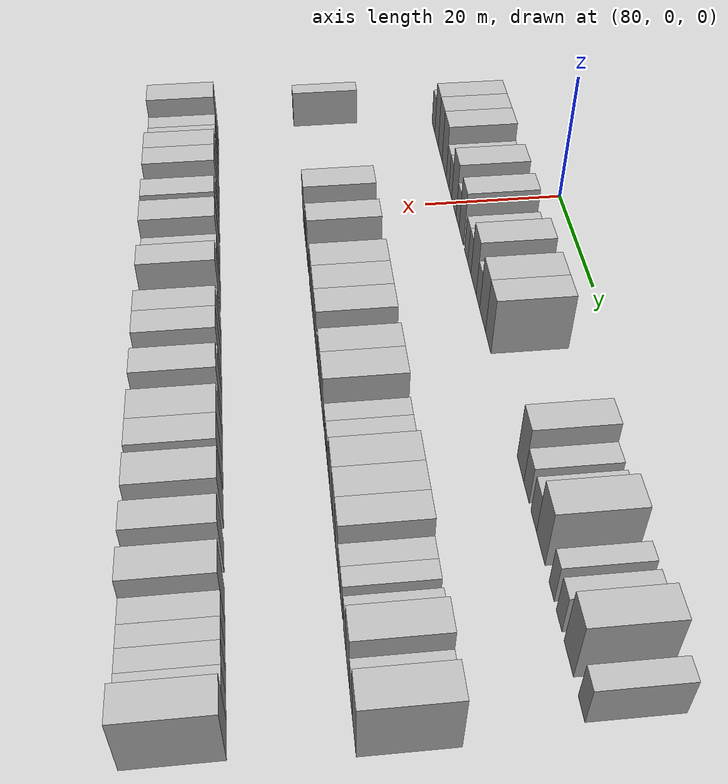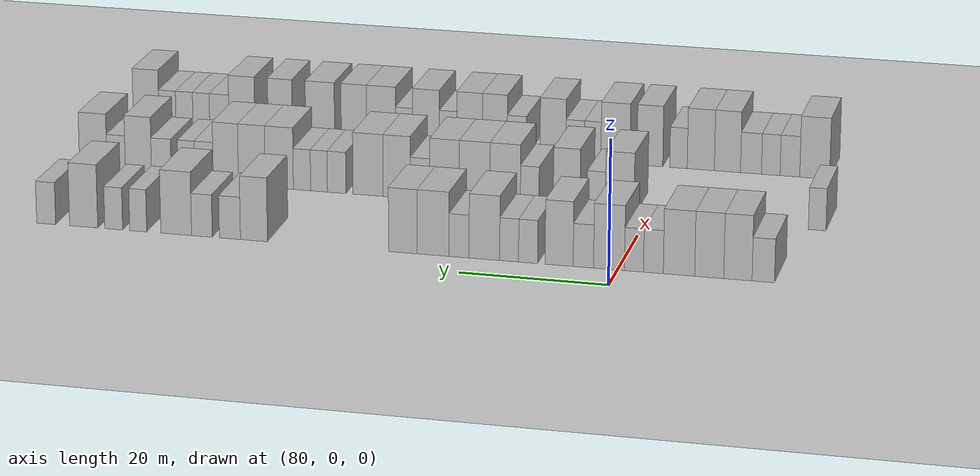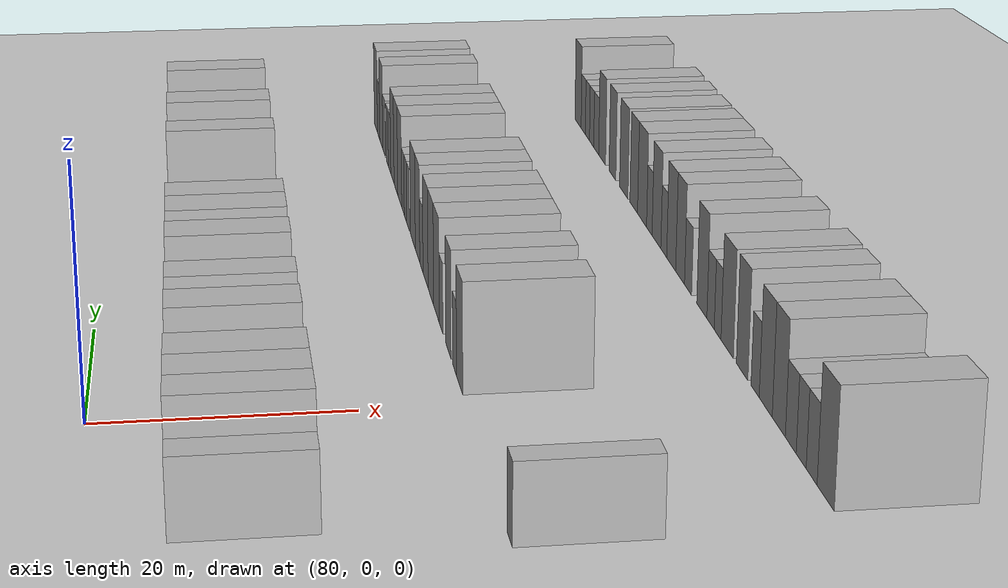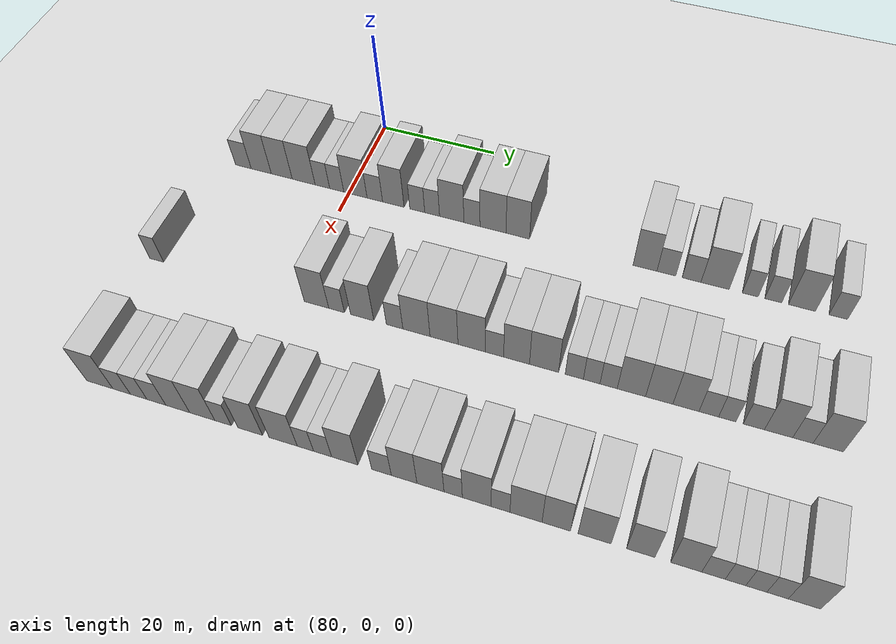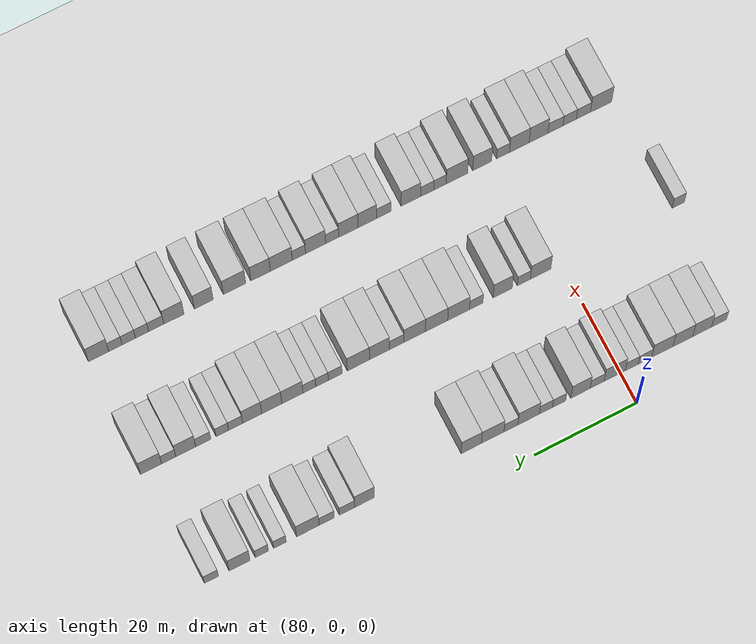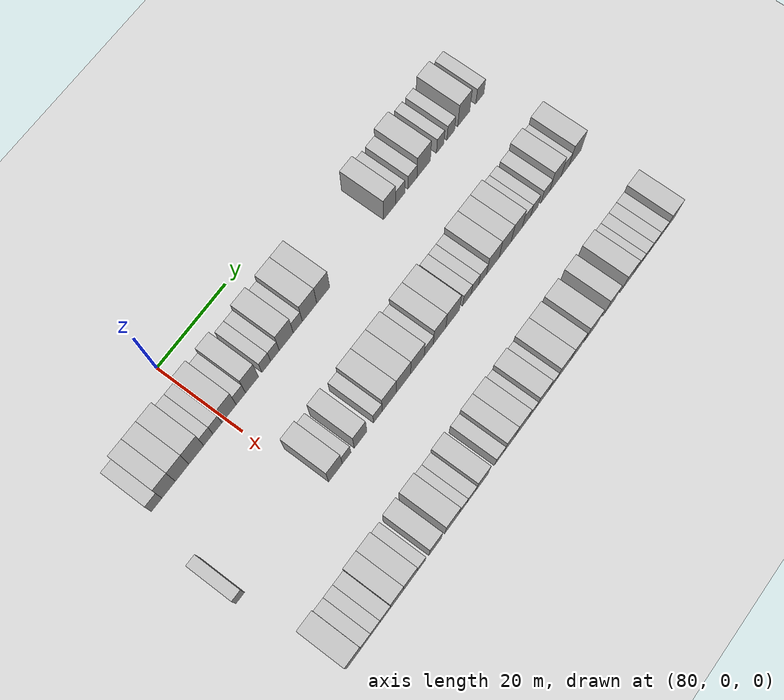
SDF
<sdf version="1.6">
 <world name="default">
  <include>
   <name>ground_plane_2</name>
   <uri>model://HANNAS_ground_plane</uri>
   <pose>100 0 0  0 0 0</pose>
  </include>
  <model name="building_651">
   <static>1</static>
   <pose>91.0000 -19.3339 0 0.000000 0.000000 0.000000</pose>
   <link name="link">
    <pose>0 0 3.00 0 0 0</pose>
    <collision name="collision"><geometry><box><size>10.0000 2.9604 6.0000</size></box></geometry></collision>
    <visual name="visual">
     <cast_shadows>0</cast_shadows>
     <geometry><box><size>10.0000 2.9604 6.0000</size></box></geometry>
     <material>
      <script>
       <uri>model://HANNAS_wall/materials/scripts</uri>
       <uri>model://HANNAS_wall/materials/textures</uri>
       <name>vrc/HANNAS_wall</name>
      </script>
     </material>
    </visual>
   </link>
  </model>
  <model name="building_652">
   <static>1</static>
   <pose>91.0000 -15.9872 0 0.000000 0.000000 0.000000</pose>
   <link name="link">
    <pose>0 0 4.50 0 0 0</pose>
    <collision name="collision"><geometry><box><size>10.0000 3.7330 9.0000</size></box></geometry></collision>
    <visual name="visual">
     <cast_shadows>0</cast_shadows>
     <geometry><box><size>10.0000 3.7330 9.0000</size></box></geometry>
     <material>
      <script>
       <uri>model://HANNAS_wall/materials/scripts</uri>
       <uri>model://HANNAS_wall/materials/textures</uri>
       <name>vrc/HANNAS_wall</name>
      </script>
     </material>
    </visual>
   </link>
  </model>
  <model name="building_653">
   <static>1</static>
   <pose>91.0000 -12.1934 0 0.000000 0.000000 0.000000</pose>
   <link name="link">
    <pose>0 0 4.50 0 0 0</pose>
    <collision name="collision"><geometry><box><size>10.0000 3.8545 9.0000</size></box></geometry></collision>
    <visual name="visual">
     <cast_shadows>0</cast_shadows>
     <geometry><box><size>10.0000 3.8545 9.0000</size></box></geometry>
     <material>
      <script>
       <uri>model://HANNAS_wall/materials/scripts</uri>
       <uri>model://HANNAS_wall/materials/textures</uri>
       <name>vrc/HANNAS_wall</name>
      </script>
     </material>
    </visual>
   </link>
  </model>
  <model name="building_654">
   <static>1</static>
   <pose>91.0000 -8.1770 0 0.000000 0.000000 0.000000</pose>
   <link name="link">
    <pose>0 0 4.50 0 0 0</pose>
    <collision name="collision"><geometry><box><size>10.0000 4.1783 9.0000</size></box></geometry></collision>
    <visual name="visual">
     <cast_shadows>0</cast_shadows>
     <geometry><box><size>10.0000 4.1783 9.0000</size></box></geometry>
     <material>
      <script>
       <uri>model://HANNAS_wall/materials/scripts</uri>
       <uri>model://HANNAS_wall/materials/textures</uri>
       <name>vrc/HANNAS_wall</name>
      </script>
     </material>
    </visual>
   </link>
  </model>
  <model name="building_655">
   <static>1</static>
   <pose>91.0000 -4.7690 0 0.000000 0.000000 0.000000</pose>
   <link name="link">
    <pose>0 0 3.00 0 0 0</pose>
    <collision name="collision"><geometry><box><size>10.0000 2.6377 6.0000</size></box></geometry></collision>
    <visual name="visual">
     <cast_shadows>0</cast_shadows>
     <geometry><box><size>10.0000 2.6377 6.0000</size></box></geometry>
     <material>
      <script>
       <uri>model://HANNAS_wall/materials/scripts</uri>
       <uri>model://HANNAS_wall/materials/textures</uri>
       <name>vrc/HANNAS_wall</name>
      </script>
     </material>
    </visual>
   </link>
  </model>
  <model name="building_656">
   <static>1</static>
   <pose>91.0000 -2.1821 0 0.000000 0.000000 0.000000</pose>
   <link name="link">
    <pose>0 0 3.00 0 0 0</pose>
    <collision name="collision"><geometry><box><size>10.0000 2.5361 6.0000</size></box></geometry></collision>
    <visual name="visual">
     <cast_shadows>0</cast_shadows>
     <geometry><box><size>10.0000 2.5361 6.0000</size></box></geometry>
     <material>
      <script>
       <uri>model://HANNAS_wall/materials/scripts</uri>
       <uri>model://HANNAS_wall/materials/textures</uri>
       <name>vrc/HANNAS_wall</name>
      </script>
     </material>
    </visual>
   </link>
  </model>
  <model name="building_657">
   <static>1</static>
   <pose>91.0000 1.1621 0 0.000000 0.000000 0.000000</pose>
   <link name="link">
    <pose>0 0 4.50 0 0 0</pose>
    <collision name="collision"><geometry><box><size>10.0000 4.1521 9.0000</size></box></geometry></collision>
    <visual name="visual">
     <cast_shadows>0</cast_shadows>
     <geometry><box><size>10.0000 4.1521 9.0000</size></box></geometry>
     <material>
      <script>
       <uri>model://HANNAS_wall/materials/scripts</uri>
       <uri>model://HANNAS_wall/materials/textures</uri>
       <name>vrc/HANNAS_wall</name>
      </script>
     </material>
    </visual>
   </link>
  </model>
  <model name="building_658">
   <static>1</static>
   <pose>91.0000 4.6110 0 0.000000 0.000000 0.000000</pose>
   <link name="link">
    <pose>0 0 3.00 0 0 0</pose>
    <collision name="collision"><geometry><box><size>10.0000 2.7458 6.0000</size></box></geometry></collision>
    <visual name="visual">
     <cast_shadows>0</cast_shadows>
     <geometry><box><size>10.0000 2.7458 6.0000</size></box></geometry>
     <material>
      <script>
       <uri>model://HANNAS_wall/materials/scripts</uri>
       <uri>model://HANNAS_wall/materials/textures</uri>
       <name>vrc/HANNAS_wall</name>
      </script>
     </material>
    </visual>
   </link>
  </model>
  <model name="building_659">
   <static>1</static>
   <pose>91.0000 7.8722 0 0.000000 0.000000 0.000000</pose>
   <link name="link">
    <pose>0 0 4.50 0 0 0</pose>
    <collision name="collision"><geometry><box><size>10.0000 3.7764 9.0000</size></box></geometry></collision>
    <visual name="visual">
     <cast_shadows>0</cast_shadows>
     <geometry><box><size>10.0000 3.7764 9.0000</size></box></geometry>
     <material>
      <script>
       <uri>model://HANNAS_wall/materials/scripts</uri>
       <uri>model://HANNAS_wall/materials/textures</uri>
       <name>vrc/HANNAS_wall</name>
      </script>
     </material>
    </visual>
   </link>
  </model>
  <model name="building_660">
   <static>1</static>
   <pose>91.0000 12.0545 0 0.000000 0.000000 0.000000</pose>
   <link name="link">
    <pose>0 0 3.00 0 0 0</pose>
    <collision name="collision"><geometry><box><size>10.0000 2.5881 6.0000</size></box></geometry></collision>
    <visual name="visual">
     <cast_shadows>0</cast_shadows>
     <geometry><box><size>10.0000 2.5881 6.0000</size></box></geometry>
     <material>
      <script>
       <uri>model://HANNAS_wall/materials/scripts</uri>
       <uri>model://HANNAS_wall/materials/textures</uri>
       <name>vrc/HANNAS_wall</name>
      </script>
     </material>
    </visual>
   </link>
  </model>
  <model name="building_661">
   <static>1</static>
   <pose>91.0000 14.6253 0 0.000000 0.000000 0.000000</pose>
   <link name="link">
    <pose>0 0 3.00 0 0 0</pose>
    <collision name="collision"><geometry><box><size>10.0000 2.5536 6.0000</size></box></geometry></collision>
    <visual name="visual">
     <cast_shadows>0</cast_shadows>
     <geometry><box><size>10.0000 2.5536 6.0000</size></box></geometry>
     <material>
      <script>
       <uri>model://HANNAS_wall/materials/scripts</uri>
       <uri>model://HANNAS_wall/materials/textures</uri>
       <name>vrc/HANNAS_wall</name>
      </script>
     </material>
    </visual>
   </link>
  </model>
  <model name="building_662">
   <static>1</static>
   <pose>91.0000 17.9892 0 0.000000 0.000000 0.000000</pose>
   <link name="link">
    <pose>0 0 4.50 0 0 0</pose>
    <collision name="collision"><geometry><box><size>10.0000 4.1741 9.0000</size></box></geometry></collision>
    <visual name="visual">
     <cast_shadows>0</cast_shadows>
     <geometry><box><size>10.0000 4.1741 9.0000</size></box></geometry>
     <material>
      <script>
       <uri>model://HANNAS_wall/materials/scripts</uri>
       <uri>model://HANNAS_wall/materials/textures</uri>
       <name>vrc/HANNAS_wall</name>
      </script>
     </material>
    </visual>
   </link>
  </model>
  <model name="building_663">
   <static>1</static>
   <pose>91.0000 21.4387 0 0.000000 0.000000 0.000000</pose>
   <link name="link">
    <pose>0 0 3.00 0 0 0</pose>
    <collision name="collision"><geometry><box><size>10.0000 2.7250 6.0000</size></box></geometry></collision>
    <visual name="visual">
     <cast_shadows>0</cast_shadows>
     <geometry><box><size>10.0000 2.7250 6.0000</size></box></geometry>
     <material>
      <script>
       <uri>model://HANNAS_wall/materials/scripts</uri>
       <uri>model://HANNAS_wall/materials/textures</uri>
       <name>vrc/HANNAS_wall</name>
      </script>
     </material>
    </visual>
   </link>
  </model>
  <model name="building_664">
   <static>1</static>
   <pose>91.0000 24.9845 0 0.000000 0.000000 0.000000</pose>
   <link name="link">
    <pose>0 0 4.50 0 0 0</pose>
    <collision name="collision"><geometry><box><size>10.0000 4.3666 9.0000</size></box></geometry></collision>
    <visual name="visual">
     <cast_shadows>0</cast_shadows>
     <geometry><box><size>10.0000 4.3666 9.0000</size></box></geometry>
     <material>
      <script>
       <uri>model://HANNAS_wall/materials/scripts</uri>
       <uri>model://HANNAS_wall/materials/textures</uri>
       <name>vrc/HANNAS_wall</name>
      </script>
     </material>
    </visual>
   </link>
  </model>
  <model name="building_665">
   <static>1</static>
   <pose>91.0000 29.1346 0 0.000000 0.000000 0.000000</pose>
   <link name="link">
    <pose>0 0 4.50 0 0 0</pose>
    <collision name="collision"><geometry><box><size>10.0000 3.9337 9.0000</size></box></geometry></collision>
    <visual name="visual">
     <cast_shadows>0</cast_shadows>
     <geometry><box><size>10.0000 3.9337 9.0000</size></box></geometry>
     <material>
      <script>
       <uri>model://HANNAS_wall/materials/scripts</uri>
       <uri>model://HANNAS_wall/materials/textures</uri>
       <name>vrc/HANNAS_wall</name>
      </script>
     </material>
    </visual>
   </link>
  </model>
  <model name="building_666">
   <static>1</static>
   <pose>91.0000 49.7744 0 0.000000 0.000000 0.000000</pose>
   <link name="link">
    <pose>0 0 4.50 0 0 0</pose>
    <collision name="collision"><geometry><box><size>10.0000 3.7819 9.0000</size></box></geometry></collision>
    <visual name="visual">
     <cast_shadows>0</cast_shadows>
     <geometry><box><size>10.0000 3.7819 9.0000</size></box></geometry>
     <material>
      <script>
       <uri>model://HANNAS_wall/materials/scripts</uri>
       <uri>model://HANNAS_wall/materials/textures</uri>
       <name>vrc/HANNAS_wall</name>
      </script>
     </material>
    </visual>
   </link>
  </model>
  <model name="building_667">
   <static>1</static>
   <pose>91.0000 53.1392 0 0.000000 0.000000 0.000000</pose>
   <link name="link">
    <pose>0 0 3.00 0 0 0</pose>
    <collision name="collision"><geometry><box><size>10.0000 2.9478 6.0000</size></box></geometry></collision>
    <visual name="visual">
     <cast_shadows>0</cast_shadows>
     <geometry><box><size>10.0000 2.9478 6.0000</size></box></geometry>
     <material>
      <script>
       <uri>model://HANNAS_wall/materials/scripts</uri>
       <uri>model://HANNAS_wall/materials/textures</uri>
       <name>vrc/HANNAS_wall</name>
      </script>
     </material>
    </visual>
   </link>
  </model>
  <model name="building_668">
   <static>1</static>
   <pose>91.0000 57.0679 0 0.000000 0.000000 0.000000</pose>
   <link name="link">
    <pose>0 0 3.00 0 0 0</pose>
    <collision name="collision"><geometry><box><size>10.0000 2.9097 6.0000</size></box></geometry></collision>
    <visual name="visual">
     <cast_shadows>0</cast_shadows>
     <geometry><box><size>10.0000 2.9097 6.0000</size></box></geometry>
     <material>
      <script>
       <uri>model://HANNAS_wall/materials/scripts</uri>
       <uri>model://HANNAS_wall/materials/textures</uri>
       <name>vrc/HANNAS_wall</name>
      </script>
     </material>
    </visual>
   </link>
  </model>
  <model name="building_669">
   <static>1</static>
   <pose>91.0000 60.6911 0 0.000000 0.000000 0.000000</pose>
   <link name="link">
    <pose>0 0 4.50 0 0 0</pose>
    <collision name="collision"><geometry><box><size>10.0000 4.3367 9.0000</size></box></geometry></collision>
    <visual name="visual">
     <cast_shadows>0</cast_shadows>
     <geometry><box><size>10.0000 4.3367 9.0000</size></box></geometry>
     <material>
      <script>
       <uri>model://HANNAS_wall/materials/scripts</uri>
       <uri>model://HANNAS_wall/materials/textures</uri>
       <name>vrc/HANNAS_wall</name>
      </script>
     </material>
    </visual>
   </link>
  </model>
  <model name="building_670">
   <static>1</static>
   <pose>91.0000 66.0617 0 0.000000 0.000000 0.000000</pose>
   <link name="link">
    <pose>0 0 3.00 0 0 0</pose>
    <collision name="collision"><geometry><box><size>10.0000 2.4045 6.0000</size></box></geometry></collision>
    <visual name="visual">
     <cast_shadows>0</cast_shadows>
     <geometry><box><size>10.0000 2.4045 6.0000</size></box></geometry>
     <material>
      <script>
       <uri>model://HANNAS_wall/materials/scripts</uri>
       <uri>model://HANNAS_wall/materials/textures</uri>
       <name>vrc/HANNAS_wall</name>
      </script>
     </material>
    </visual>
   </link>
  </model>
  <model name="building_671">
   <static>1</static>
   <pose>91.0000 69.5328 0 0.000000 0.000000 0.000000</pose>
   <link name="link">
    <pose>0 0 3.00 0 0 0</pose>
    <collision name="collision"><geometry><box><size>10.0000 2.5377 6.0000</size></box></geometry></collision>
    <visual name="visual">
     <cast_shadows>0</cast_shadows>
     <geometry><box><size>10.0000 2.5377 6.0000</size></box></geometry>
     <material>
      <script>
       <uri>model://HANNAS_wall/materials/scripts</uri>
       <uri>model://HANNAS_wall/materials/textures</uri>
       <name>vrc/HANNAS_wall</name>
      </script>
     </material>
    </visual>
   </link>
  </model>
  <model name="building_672">
   <static>1</static>
   <pose>91.0000 73.8067 0 0.000000 0.000000 0.000000</pose>
   <link name="link">
    <pose>0 0 4.50 0 0 0</pose>
    <collision name="collision"><geometry><box><size>10.0000 4.0100 9.0000</size></box></geometry></collision>
    <visual name="visual">
     <cast_shadows>0</cast_shadows>
     <geometry><box><size>10.0000 4.0100 9.0000</size></box></geometry>
     <material>
      <script>
       <uri>model://HANNAS_wall/materials/scripts</uri>
       <uri>model://HANNAS_wall/materials/textures</uri>
       <name>vrc/HANNAS_wall</name>
      </script>
     </material>
    </visual>
   </link>
  </model>
  <model name="building_673">
   <static>1</static>
   <pose>91.0000 79.1689 0 0.000000 0.000000 0.000000</pose>
   <link name="link">
    <pose>0 0 3.00 0 0 0</pose>
    <collision name="collision"><geometry><box><size>10.0000 2.7145 6.0000</size></box></geometry></collision>
    <visual name="visual">
     <cast_shadows>0</cast_shadows>
     <geometry><box><size>10.0000 2.7145 6.0000</size></box></geometry>
     <material>
      <script>
       <uri>model://HANNAS_wall/materials/scripts</uri>
       <uri>model://HANNAS_wall/materials/textures</uri>
       <name>vrc/HANNAS_wall</name>
      </script>
     </material>
    </visual>
   </link>
  </model>
  <model name="building_841">
   <static>1</static>
   <pose>113.0000 -23.1494 0 0.000000 0.000000 0.000000</pose>
   <link name="link">
    <pose>0 0 3.00 0 0 0</pose>
    <collision name="collision"><geometry><box><size>10.0000 2.4161 6.0000</size></box></geometry></collision>
    <visual name="visual">
     <cast_shadows>0</cast_shadows>
     <geometry><box><size>10.0000 2.4161 6.0000</size></box></geometry>
     <material>
      <script>
       <uri>model://HANNAS_wall/materials/scripts</uri>
       <uri>model://HANNAS_wall/materials/textures</uri>
       <name>vrc/HANNAS_wall</name>
      </script>
     </material>
    </visual>
   </link>
  </model>
  <model name="building_842">
   <static>1</static>
   <pose>113.0000 4.0814 0 0.000000 0.000000 0.000000</pose>
   <link name="link">
    <pose>0 0 4.50 0 0 0</pose>
    <collision name="collision"><geometry><box><size>10.0000 4.0151 9.0000</size></box></geometry></collision>
    <visual name="visual">
     <cast_shadows>0</cast_shadows>
     <geometry><box><size>10.0000 4.0151 9.0000</size></box></geometry>
     <material>
      <script>
       <uri>model://HANNAS_wall/materials/scripts</uri>
       <uri>model://HANNAS_wall/materials/textures</uri>
       <name>vrc/HANNAS_wall</name>
      </script>
     </material>
    </visual>
   </link>
  </model>
  <model name="building_843">
   <static>1</static>
   <pose>113.0000 7.3677 0 0.000000 0.000000 0.000000</pose>
   <link name="link">
    <pose>0 0 3.00 0 0 0</pose>
    <collision name="collision"><geometry><box><size>10.0000 2.5576 6.0000</size></box></geometry></collision>
    <visual name="visual">
     <cast_shadows>0</cast_shadows>
     <geometry><box><size>10.0000 2.5576 6.0000</size></box></geometry>
     <material>
      <script>
       <uri>model://HANNAS_wall/materials/scripts</uri>
       <uri>model://HANNAS_wall/materials/textures</uri>
       <name>vrc/HANNAS_wall</name>
      </script>
     </material>
    </visual>
   </link>
  </model>
  <model name="building_844">
   <static>1</static>
   <pose>113.0000 11.5182 0 0.000000 0.000000 0.000000</pose>
   <link name="link">
    <pose>0 0 4.50 0 0 0</pose>
    <collision name="collision"><geometry><box><size>10.0000 3.7434 9.0000</size></box></geometry></collision>
    <visual name="visual">
     <cast_shadows>0</cast_shadows>
     <geometry><box><size>10.0000 3.7434 9.0000</size></box></geometry>
     <material>
      <script>
       <uri>model://HANNAS_wall/materials/scripts</uri>
       <uri>model://HANNAS_wall/materials/textures</uri>
       <name>vrc/HANNAS_wall</name>
      </script>
     </material>
    </visual>
   </link>
  </model>
  <model name="building_845">
   <static>1</static>
   <pose>113.0000 16.7052 0 0.000000 0.000000 0.000000</pose>
   <link name="link">
    <pose>0 0 3.00 0 0 0</pose>
    <collision name="collision"><geometry><box><size>10.0000 2.6304 6.0000</size></box></geometry></collision>
    <visual name="visual">
     <cast_shadows>0</cast_shadows>
     <geometry><box><size>10.0000 2.6304 6.0000</size></box></geometry>
     <material>
      <script>
       <uri>model://HANNAS_wall/materials/scripts</uri>
       <uri>model://HANNAS_wall/materials/textures</uri>
       <name>vrc/HANNAS_wall</name>
      </script>
     </material>
    </visual>
   </link>
  </model>
  <model name="building_846">
   <static>1</static>
   <pose>113.0000 20.1575 0 0.000000 0.000000 0.000000</pose>
   <link name="link">
    <pose>0 0 4.50 0 0 0</pose>
    <collision name="collision"><geometry><box><size>10.0000 4.2743 9.0000</size></box></geometry></collision>
    <visual name="visual">
     <cast_shadows>0</cast_shadows>
     <geometry><box><size>10.0000 4.2743 9.0000</size></box></geometry>
     <material>
      <script>
       <uri>model://HANNAS_wall/materials/scripts</uri>
       <uri>model://HANNAS_wall/materials/textures</uri>
       <name>vrc/HANNAS_wall</name>
      </script>
     </material>
    </visual>
   </link>
  </model>
  <model name="building_847">
   <static>1</static>
   <pose>113.0000 24.4701 0 0.000000 0.000000 0.000000</pose>
   <link name="link">
    <pose>0 0 4.50 0 0 0</pose>
    <collision name="collision"><geometry><box><size>10.0000 4.3508 9.0000</size></box></geometry></collision>
    <visual name="visual">
     <cast_shadows>0</cast_shadows>
     <geometry><box><size>10.0000 4.3508 9.0000</size></box></geometry>
     <material>
      <script>
       <uri>model://HANNAS_wall/materials/scripts</uri>
       <uri>model://HANNAS_wall/materials/textures</uri>
       <name>vrc/HANNAS_wall</name>
      </script>
     </material>
    </visual>
   </link>
  </model>
  <model name="building_848">
   <static>1</static>
   <pose>113.0000 28.7429 0 0.000000 0.000000 0.000000</pose>
   <link name="link">
    <pose>0 0 4.50 0 0 0</pose>
    <collision name="collision"><geometry><box><size>10.0000 4.1948 9.0000</size></box></geometry></collision>
    <visual name="visual">
     <cast_shadows>0</cast_shadows>
     <geometry><box><size>10.0000 4.1948 9.0000</size></box></geometry>
     <material>
      <script>
       <uri>model://HANNAS_wall/materials/scripts</uri>
       <uri>model://HANNAS_wall/materials/textures</uri>
       <name>vrc/HANNAS_wall</name>
      </script>
     </material>
    </visual>
   </link>
  </model>
  <model name="building_849">
   <static>1</static>
   <pose>113.0000 32.2368 0 0.000000 0.000000 0.000000</pose>
   <link name="link">
    <pose>0 0 3.00 0 0 0</pose>
    <collision name="collision"><geometry><box><size>10.0000 2.7930 6.0000</size></box></geometry></collision>
    <visual name="visual">
     <cast_shadows>0</cast_shadows>
     <geometry><box><size>10.0000 2.7930 6.0000</size></box></geometry>
     <material>
      <script>
       <uri>model://HANNAS_wall/materials/scripts</uri>
       <uri>model://HANNAS_wall/materials/textures</uri>
       <name>vrc/HANNAS_wall</name>
      </script>
     </material>
    </visual>
   </link>
  </model>
  <model name="building_850">
   <static>1</static>
   <pose>113.0000 35.5878 0 0.000000 0.000000 0.000000</pose>
   <link name="link">
    <pose>0 0 4.50 0 0 0</pose>
    <collision name="collision"><geometry><box><size>10.0000 3.9089 9.0000</size></box></geometry></collision>
    <visual name="visual">
     <cast_shadows>0</cast_shadows>
     <geometry><box><size>10.0000 3.9089 9.0000</size></box></geometry>
     <material>
      <script>
       <uri>model://HANNAS_wall/materials/scripts</uri>
       <uri>model://HANNAS_wall/materials/textures</uri>
       <name>vrc/HANNAS_wall</name>
      </script>
     </material>
    </visual>
   </link>
  </model>
  <model name="building_851">
   <static>1</static>
   <pose>113.0000 39.7065 0 0.000000 0.000000 0.000000</pose>
   <link name="link">
    <pose>0 0 4.50 0 0 0</pose>
    <collision name="collision"><geometry><box><size>10.0000 4.3285 9.0000</size></box></geometry></collision>
    <visual name="visual">
     <cast_shadows>0</cast_shadows>
     <geometry><box><size>10.0000 4.3285 9.0000</size></box></geometry>
     <material>
      <script>
       <uri>model://HANNAS_wall/materials/scripts</uri>
       <uri>model://HANNAS_wall/materials/textures</uri>
       <name>vrc/HANNAS_wall</name>
      </script>
     </material>
    </visual>
   </link>
  </model>
  <model name="building_852">
   <static>1</static>
   <pose>113.0000 44.2056 0 0.000000 0.000000 0.000000</pose>
   <link name="link">
    <pose>0 0 3.00 0 0 0</pose>
    <collision name="collision"><geometry><box><size>10.0000 2.6697 6.0000</size></box></geometry></collision>
    <visual name="visual">
     <cast_shadows>0</cast_shadows>
     <geometry><box><size>10.0000 2.6697 6.0000</size></box></geometry>
     <material>
      <script>
       <uri>model://HANNAS_wall/materials/scripts</uri>
       <uri>model://HANNAS_wall/materials/textures</uri>
       <name>vrc/HANNAS_wall</name>
      </script>
     </material>
    </visual>
   </link>
  </model>
  <model name="building_853">
   <static>1</static>
   <pose>113.0000 46.7541 0 0.000000 0.000000 0.000000</pose>
   <link name="link">
    <pose>0 0 3.00 0 0 0</pose>
    <collision name="collision"><geometry><box><size>10.0000 2.4275 6.0000</size></box></geometry></collision>
    <visual name="visual">
     <cast_shadows>0</cast_shadows>
     <geometry><box><size>10.0000 2.4275 6.0000</size></box></geometry>
     <material>
      <script>
       <uri>model://HANNAS_wall/materials/scripts</uri>
       <uri>model://HANNAS_wall/materials/textures</uri>
       <name>vrc/HANNAS_wall</name>
      </script>
     </material>
    </visual>
   </link>
  </model>
  <model name="building_854">
   <static>1</static>
   <pose>113.0000 49.2164 0 0.000000 0.000000 0.000000</pose>
   <link name="link">
    <pose>0 0 3.00 0 0 0</pose>
    <collision name="collision"><geometry><box><size>10.0000 2.4971 6.0000</size></box></geometry></collision>
    <visual name="visual">
     <cast_shadows>0</cast_shadows>
     <geometry><box><size>10.0000 2.4971 6.0000</size></box></geometry>
     <material>
      <script>
       <uri>model://HANNAS_wall/materials/scripts</uri>
       <uri>model://HANNAS_wall/materials/textures</uri>
       <name>vrc/HANNAS_wall</name>
      </script>
     </material>
    </visual>
   </link>
  </model>
  <model name="building_855">
   <static>1</static>
   <pose>113.0000 52.5095 0 0.000000 0.000000 0.000000</pose>
   <link name="link">
    <pose>0 0 4.50 0 0 0</pose>
    <collision name="collision"><geometry><box><size>10.0000 4.0890 9.0000</size></box></geometry></collision>
    <visual name="visual">
     <cast_shadows>0</cast_shadows>
     <geometry><box><size>10.0000 4.0890 9.0000</size></box></geometry>
     <material>
      <script>
       <uri>model://HANNAS_wall/materials/scripts</uri>
       <uri>model://HANNAS_wall/materials/textures</uri>
       <name>vrc/HANNAS_wall</name>
      </script>
     </material>
    </visual>
   </link>
  </model>
  <model name="building_856">
   <static>1</static>
   <pose>113.0000 56.4998 0 0.000000 0.000000 0.000000</pose>
   <link name="link">
    <pose>0 0 4.50 0 0 0</pose>
    <collision name="collision"><geometry><box><size>10.0000 3.8915 9.0000</size></box></geometry></collision>
    <visual name="visual">
     <cast_shadows>0</cast_shadows>
     <geometry><box><size>10.0000 3.8915 9.0000</size></box></geometry>
     <material>
      <script>
       <uri>model://HANNAS_wall/materials/scripts</uri>
       <uri>model://HANNAS_wall/materials/textures</uri>
       <name>vrc/HANNAS_wall</name>
      </script>
     </material>
    </visual>
   </link>
  </model>
  <model name="building_857">
   <static>1</static>
   <pose>113.0000 60.2853 0 0.000000 0.000000 0.000000</pose>
   <link name="link">
    <pose>0 0 4.50 0 0 0</pose>
    <collision name="collision"><geometry><box><size>10.0000 3.6796 9.0000</size></box></geometry></collision>
    <visual name="visual">
     <cast_shadows>0</cast_shadows>
     <geometry><box><size>10.0000 3.6796 9.0000</size></box></geometry>
     <material>
      <script>
       <uri>model://HANNAS_wall/materials/scripts</uri>
       <uri>model://HANNAS_wall/materials/textures</uri>
       <name>vrc/HANNAS_wall</name>
      </script>
     </material>
    </visual>
   </link>
  </model>
  <model name="building_858">
   <static>1</static>
   <pose>113.0000 63.4930 0 0.000000 0.000000 0.000000</pose>
   <link name="link">
    <pose>0 0 3.00 0 0 0</pose>
    <collision name="collision"><geometry><box><size>10.0000 2.7358 6.0000</size></box></geometry></collision>
    <visual name="visual">
     <cast_shadows>0</cast_shadows>
     <geometry><box><size>10.0000 2.7358 6.0000</size></box></geometry>
     <material>
      <script>
       <uri>model://HANNAS_wall/materials/scripts</uri>
       <uri>model://HANNAS_wall/materials/textures</uri>
       <name>vrc/HANNAS_wall</name>
      </script>
     </material>
    </visual>
   </link>
  </model>
  <model name="building_859">
   <static>1</static>
   <pose>113.0000 66.0669 0 0.000000 0.000000 0.000000</pose>
   <link name="link">
    <pose>0 0 3.00 0 0 0</pose>
    <collision name="collision"><geometry><box><size>10.0000 2.4119 6.0000</size></box></geometry></collision>
    <visual name="visual">
     <cast_shadows>0</cast_shadows>
     <geometry><box><size>10.0000 2.4119 6.0000</size></box></geometry>
     <material>
      <script>
       <uri>model://HANNAS_wall/materials/scripts</uri>
       <uri>model://HANNAS_wall/materials/textures</uri>
       <name>vrc/HANNAS_wall</name>
      </script>
     </material>
    </visual>
   </link>
  </model>
  <model name="building_860">
   <static>1</static>
   <pose>113.0000 69.7237 0 0.000000 0.000000 0.000000</pose>
   <link name="link">
    <pose>0 0 3.00 0 0 0</pose>
    <collision name="collision"><geometry><box><size>10.0000 2.9018 6.0000</size></box></geometry></collision>
    <visual name="visual">
     <cast_shadows>0</cast_shadows>
     <geometry><box><size>10.0000 2.9018 6.0000</size></box></geometry>
     <material>
      <script>
       <uri>model://HANNAS_wall/materials/scripts</uri>
       <uri>model://HANNAS_wall/materials/textures</uri>
       <name>vrc/HANNAS_wall</name>
      </script>
     </material>
    </visual>
   </link>
  </model>
  <model name="building_861">
   <static>1</static>
   <pose>113.0000 73.0992 0 0.000000 0.000000 0.000000</pose>
   <link name="link">
    <pose>0 0 4.50 0 0 0</pose>
    <collision name="collision"><geometry><box><size>10.0000 3.8492 9.0000</size></box></geometry></collision>
    <visual name="visual">
     <cast_shadows>0</cast_shadows>
     <geometry><box><size>10.0000 3.8492 9.0000</size></box></geometry>
     <material>
      <script>
       <uri>model://HANNAS_wall/materials/scripts</uri>
       <uri>model://HANNAS_wall/materials/textures</uri>
       <name>vrc/HANNAS_wall</name>
      </script>
     </material>
    </visual>
   </link>
  </model>
  <model name="building_862">
   <static>1</static>
   <pose>113.0000 76.3849 0 0.000000 0.000000 0.000000</pose>
   <link name="link">
    <pose>0 0 3.00 0 0 0</pose>
    <collision name="collision"><geometry><box><size>10.0000 2.7221 6.0000</size></box></geometry></collision>
    <visual name="visual">
     <cast_shadows>0</cast_shadows>
     <geometry><box><size>10.0000 2.7221 6.0000</size></box></geometry>
     <material>
      <script>
       <uri>model://HANNAS_wall/materials/scripts</uri>
       <uri>model://HANNAS_wall/materials/textures</uri>
       <name>vrc/HANNAS_wall</name>
      </script>
     </material>
    </visual>
   </link>
  </model>
  <model name="building_863">
   <static>1</static>
   <pose>113.0000 79.7720 0 0.000000 0.000000 0.000000</pose>
   <link name="link">
    <pose>0 0 4.50 0 0 0</pose>
    <collision name="collision"><geometry><box><size>10.0000 4.0522 9.0000</size></box></geometry></collision>
    <visual name="visual">
     <cast_shadows>0</cast_shadows>
     <geometry><box><size>10.0000 4.0522 9.0000</size></box></geometry>
     <material>
      <script>
       <uri>model://HANNAS_wall/materials/scripts</uri>
       <uri>model://HANNAS_wall/materials/textures</uri>
       <name>vrc/HANNAS_wall</name>
      </script>
     </material>
    </visual>
   </link>
  </model>
  <model name="building_1013">
   <static>1</static>
   <pose>135.0000 -19.5318 0 0.000000 0.000000 0.000000</pose>
   <link name="link">
    <pose>0 0 4.50 0 0 0</pose>
    <collision name="collision"><geometry><box><size>10.0000 4.2353 9.0000</size></box></geometry></collision>
    <visual name="visual">
     <cast_shadows>0</cast_shadows>
     <geometry><box><size>10.0000 4.2353 9.0000</size></box></geometry>
     <material>
      <script>
       <uri>model://HANNAS_wall/materials/scripts</uri>
       <uri>model://HANNAS_wall/materials/textures</uri>
       <name>vrc/HANNAS_wall</name>
      </script>
     </material>
    </visual>
   </link>
  </model>
  <model name="building_1014">
   <static>1</static>
   <pose>135.0000 -16.0129 0 0.000000 0.000000 0.000000</pose>
   <link name="link">
    <pose>0 0 3.00 0 0 0</pose>
    <collision name="collision"><geometry><box><size>10.0000 2.8024 6.0000</size></box></geometry></collision>
    <visual name="visual">
     <cast_shadows>0</cast_shadows>
     <geometry><box><size>10.0000 2.8024 6.0000</size></box></geometry>
     <material>
      <script>
       <uri>model://HANNAS_wall/materials/scripts</uri>
       <uri>model://HANNAS_wall/materials/textures</uri>
       <name>vrc/HANNAS_wall</name>
      </script>
     </material>
    </visual>
   </link>
  </model>
  <model name="building_1015">
   <static>1</static>
   <pose>135.0000 -13.2863 0 0.000000 0.000000 0.000000</pose>
   <link name="link">
    <pose>0 0 3.00 0 0 0</pose>
    <collision name="collision"><geometry><box><size>10.0000 2.6507 6.0000</size></box></geometry></collision>
    <visual name="visual">
     <cast_shadows>0</cast_shadows>
     <geometry><box><size>10.0000 2.6507 6.0000</size></box></geometry>
     <material>
      <script>
       <uri>model://HANNAS_wall/materials/scripts</uri>
       <uri>model://HANNAS_wall/materials/textures</uri>
       <name>vrc/HANNAS_wall</name>
      </script>
     </material>
    </visual>
   </link>
  </model>
  <model name="building_1016">
   <static>1</static>
   <pose>135.0000 -10.4654 0 0.000000 0.000000 0.000000</pose>
   <link name="link">
    <pose>0 0 3.00 0 0 0</pose>
    <collision name="collision"><geometry><box><size>10.0000 2.9911 6.0000</size></box></geometry></collision>
    <visual name="visual">
     <cast_shadows>0</cast_shadows>
     <geometry><box><size>10.0000 2.9911 6.0000</size></box></geometry>
     <material>
      <script>
       <uri>model://HANNAS_wall/materials/scripts</uri>
       <uri>model://HANNAS_wall/materials/textures</uri>
       <name>vrc/HANNAS_wall</name>
      </script>
     </material>
    </visual>
   </link>
  </model>
  <model name="building_1017">
   <static>1</static>
   <pose>135.0000 -7.0968 0 0.000000 0.000000 0.000000</pose>
   <link name="link">
    <pose>0 0 4.50 0 0 0</pose>
    <collision name="collision"><geometry><box><size>10.0000 3.7461 9.0000</size></box></geometry></collision>
    <visual name="visual">
     <cast_shadows>0</cast_shadows>
     <geometry><box><size>10.0000 3.7461 9.0000</size></box></geometry>
     <material>
      <script>
       <uri>model://HANNAS_wall/materials/scripts</uri>
       <uri>model://HANNAS_wall/materials/textures</uri>
       <name>vrc/HANNAS_wall</name>
      </script>
     </material>
    </visual>
   </link>
  </model>
  <model name="building_1018">
   <static>1</static>
   <pose>135.0000 -3.2769 0 0.000000 0.000000 0.000000</pose>
   <link name="link">
    <pose>0 0 4.50 0 0 0</pose>
    <collision name="collision"><geometry><box><size>10.0000 3.8937 9.0000</size></box></geometry></collision>
    <visual name="visual">
     <cast_shadows>0</cast_shadows>
     <geometry><box><size>10.0000 3.8937 9.0000</size></box></geometry>
     <material>
      <script>
       <uri>model://HANNAS_wall/materials/scripts</uri>
       <uri>model://HANNAS_wall/materials/textures</uri>
       <name>vrc/HANNAS_wall</name>
      </script>
     </material>
    </visual>
   </link>
  </model>
  <model name="building_1019">
   <static>1</static>
   <pose>135.0000 -0.0633 0 0.000000 0.000000 0.000000</pose>
   <link name="link">
    <pose>0 0 3.00 0 0 0</pose>
    <collision name="collision"><geometry><box><size>10.0000 2.5334 6.0000</size></box></geometry></collision>
    <visual name="visual">
     <cast_shadows>0</cast_shadows>
     <geometry><box><size>10.0000 2.5334 6.0000</size></box></geometry>
     <material>
      <script>
       <uri>model://HANNAS_wall/materials/scripts</uri>
       <uri>model://HANNAS_wall/materials/textures</uri>
       <name>vrc/HANNAS_wall</name>
      </script>
     </material>
    </visual>
   </link>
  </model>
  <model name="building_1020">
   <static>1</static>
   <pose>135.0000 4.0663 0 0.000000 0.000000 0.000000</pose>
   <link name="link">
    <pose>0 0 4.50 0 0 0</pose>
    <collision name="collision"><geometry><box><size>10.0000 3.7258 9.0000</size></box></geometry></collision>
    <visual name="visual">
     <cast_shadows>0</cast_shadows>
     <geometry><box><size>10.0000 3.7258 9.0000</size></box></geometry>
     <material>
      <script>
       <uri>model://HANNAS_wall/materials/scripts</uri>
       <uri>model://HANNAS_wall/materials/textures</uri>
       <name>vrc/HANNAS_wall</name>
      </script>
     </material>
    </visual>
   </link>
  </model>
  <model name="building_1021">
   <static>1</static>
   <pose>135.0000 9.0443 0 0.000000 0.000000 0.000000</pose>
   <link name="link">
    <pose>0 0 4.50 0 0 0</pose>
    <collision name="collision"><geometry><box><size>10.0000 4.2302 9.0000</size></box></geometry></collision>
    <visual name="visual">
     <cast_shadows>0</cast_shadows>
     <geometry><box><size>10.0000 4.2302 9.0000</size></box></geometry>
     <material>
      <script>
       <uri>model://HANNAS_wall/materials/scripts</uri>
       <uri>model://HANNAS_wall/materials/textures</uri>
       <name>vrc/HANNAS_wall</name>
      </script>
     </material>
    </visual>
   </link>
  </model>
  <model name="building_1022">
   <static>1</static>
   <pose>135.0000 12.3628 0 0.000000 0.000000 0.000000</pose>
   <link name="link">
    <pose>0 0 3.00 0 0 0</pose>
    <collision name="collision"><geometry><box><size>10.0000 2.4067 6.0000</size></box></geometry></collision>
    <visual name="visual">
     <cast_shadows>0</cast_shadows>
     <geometry><box><size>10.0000 2.4067 6.0000</size></box></geometry>
     <material>
      <script>
       <uri>model://HANNAS_wall/materials/scripts</uri>
       <uri>model://HANNAS_wall/materials/textures</uri>
       <name>vrc/HANNAS_wall</name>
      </script>
     </material>
    </visual>
   </link>
  </model>
  <model name="building_1023">
   <static>1</static>
   <pose>135.0000 14.9010 0 0.000000 0.000000 0.000000</pose>
   <link name="link">
    <pose>0 0 3.00 0 0 0</pose>
    <collision name="collision"><geometry><box><size>10.0000 2.6697 6.0000</size></box></geometry></collision>
    <visual name="visual">
     <cast_shadows>0</cast_shadows>
     <geometry><box><size>10.0000 2.6697 6.0000</size></box></geometry>
     <material>
      <script>
       <uri>model://HANNAS_wall/materials/scripts</uri>
       <uri>model://HANNAS_wall/materials/textures</uri>
       <name>vrc/HANNAS_wall</name>
      </script>
     </material>
    </visual>
   </link>
  </model>
  <model name="building_1024">
   <static>1</static>
   <pose>135.0000 18.1343 0 0.000000 0.000000 0.000000</pose>
   <link name="link">
    <pose>0 0 4.50 0 0 0</pose>
    <collision name="collision"><geometry><box><size>10.0000 3.7970 9.0000</size></box></geometry></collision>
    <visual name="visual">
     <cast_shadows>0</cast_shadows>
     <geometry><box><size>10.0000 3.7970 9.0000</size></box></geometry>
     <material>
      <script>
       <uri>model://HANNAS_wall/materials/scripts</uri>
       <uri>model://HANNAS_wall/materials/textures</uri>
       <name>vrc/HANNAS_wall</name>
      </script>
     </material>
    </visual>
   </link>
  </model>
  <model name="building_1025">
   <static>1</static>
   <pose>135.0000 23.4410 0 0.000000 0.000000 0.000000</pose>
   <link name="link">
    <pose>0 0 3.00 0 0 0</pose>
    <collision name="collision"><geometry><box><size>10.0000 2.8163 6.0000</size></box></geometry></collision>
    <visual name="visual">
     <cast_shadows>0</cast_shadows>
     <geometry><box><size>10.0000 2.8163 6.0000</size></box></geometry>
     <material>
      <script>
       <uri>model://HANNAS_wall/materials/scripts</uri>
       <uri>model://HANNAS_wall/materials/textures</uri>
       <name>vrc/HANNAS_wall</name>
      </script>
     </material>
    </visual>
   </link>
  </model>
  <model name="building_1026">
   <static>1</static>
   <pose>135.0000 26.6628 0 0.000000 0.000000 0.000000</pose>
   <link name="link">
    <pose>0 0 4.50 0 0 0</pose>
    <collision name="collision"><geometry><box><size>10.0000 3.6273 9.0000</size></box></geometry></collision>
    <visual name="visual">
     <cast_shadows>0</cast_shadows>
     <geometry><box><size>10.0000 3.6273 9.0000</size></box></geometry>
     <material>
      <script>
       <uri>model://HANNAS_wall/materials/scripts</uri>
       <uri>model://HANNAS_wall/materials/textures</uri>
       <name>vrc/HANNAS_wall</name>
      </script>
     </material>
    </visual>
   </link>
  </model>
  <model name="building_1027">
   <static>1</static>
   <pose>135.0000 30.3769 0 0.000000 0.000000 0.000000</pose>
   <link name="link">
    <pose>0 0 4.50 0 0 0</pose>
    <collision name="collision"><geometry><box><size>10.0000 3.8008 9.0000</size></box></geometry></collision>
    <visual name="visual">
     <cast_shadows>0</cast_shadows>
     <geometry><box><size>10.0000 3.8008 9.0000</size></box></geometry>
     <material>
      <script>
       <uri>model://HANNAS_wall/materials/scripts</uri>
       <uri>model://HANNAS_wall/materials/textures</uri>
       <name>vrc/HANNAS_wall</name>
      </script>
     </material>
    </visual>
   </link>
  </model>
  <model name="building_1028">
   <static>1</static>
   <pose>135.0000 33.5543 0 0.000000 0.000000 0.000000</pose>
   <link name="link">
    <pose>0 0 3.00 0 0 0</pose>
    <collision name="collision"><geometry><box><size>10.0000 2.5539 6.0000</size></box></geometry></collision>
    <visual name="visual">
     <cast_shadows>0</cast_shadows>
     <geometry><box><size>10.0000 2.5539 6.0000</size></box></geometry>
     <material>
      <script>
       <uri>model://HANNAS_wall/materials/scripts</uri>
       <uri>model://HANNAS_wall/materials/textures</uri>
       <name>vrc/HANNAS_wall</name>
      </script>
     </material>
    </visual>
   </link>
  </model>
  <model name="building_1029">
   <static>1</static>
   <pose>135.0000 36.8104 0 0.000000 0.000000 0.000000</pose>
   <link name="link">
    <pose>0 0 4.50 0 0 0</pose>
    <collision name="collision"><geometry><box><size>10.0000 3.9582 9.0000</size></box></geometry></collision>
    <visual name="visual">
     <cast_shadows>0</cast_shadows>
     <geometry><box><size>10.0000 3.9582 9.0000</size></box></geometry>
     <material>
      <script>
       <uri>model://HANNAS_wall/materials/scripts</uri>
       <uri>model://HANNAS_wall/materials/textures</uri>
       <name>vrc/HANNAS_wall</name>
      </script>
     </material>
    </visual>
   </link>
  </model>
  <model name="building_1030">
   <static>1</static>
   <pose>135.0000 40.0682 0 0.000000 0.000000 0.000000</pose>
   <link name="link">
    <pose>0 0 3.00 0 0 0</pose>
    <collision name="collision"><geometry><box><size>10.0000 2.5575 6.0000</size></box></geometry></collision>
    <visual name="visual">
     <cast_shadows>0</cast_shadows>
     <geometry><box><size>10.0000 2.5575 6.0000</size></box></geometry>
     <material>
      <script>
       <uri>model://HANNAS_wall/materials/scripts</uri>
       <uri>model://HANNAS_wall/materials/textures</uri>
       <name>vrc/HANNAS_wall</name>
      </script>
     </material>
    </visual>
   </link>
  </model>
  <model name="building_1031">
   <static>1</static>
   <pose>135.0000 43.5106 0 0.000000 0.000000 0.000000</pose>
   <link name="link">
    <pose>0 0 4.50 0 0 0</pose>
    <collision name="collision"><geometry><box><size>10.0000 4.3272 9.0000</size></box></geometry></collision>
    <visual name="visual">
     <cast_shadows>0</cast_shadows>
     <geometry><box><size>10.0000 4.3272 9.0000</size></box></geometry>
     <material>
      <script>
       <uri>model://HANNAS_wall/materials/scripts</uri>
       <uri>model://HANNAS_wall/materials/textures</uri>
       <name>vrc/HANNAS_wall</name>
      </script>
     </material>
    </visual>
   </link>
  </model>
  <model name="building_1032">
   <static>1</static>
   <pose>135.0000 47.5665 0 0.000000 0.000000 0.000000</pose>
   <link name="link">
    <pose>0 0 4.50 0 0 0</pose>
    <collision name="collision"><geometry><box><size>10.0000 3.7846 9.0000</size></box></geometry></collision>
    <visual name="visual">
     <cast_shadows>0</cast_shadows>
     <geometry><box><size>10.0000 3.7846 9.0000</size></box></geometry>
     <material>
      <script>
       <uri>model://HANNAS_wall/materials/scripts</uri>
       <uri>model://HANNAS_wall/materials/textures</uri>
       <name>vrc/HANNAS_wall</name>
      </script>
     </material>
    </visual>
   </link>
  </model>
  <model name="building_1033">
   <static>1</static>
   <pose>135.0000 52.6299 0 0.000000 0.000000 0.000000</pose>
   <link name="link">
    <pose>0 0 4.50 0 0 0</pose>
    <collision name="collision"><geometry><box><size>10.0000 4.3423 9.0000</size></box></geometry></collision>
    <visual name="visual">
     <cast_shadows>0</cast_shadows>
     <geometry><box><size>10.0000 4.3423 9.0000</size></box></geometry>
     <material>
      <script>
       <uri>model://HANNAS_wall/materials/scripts</uri>
       <uri>model://HANNAS_wall/materials/textures</uri>
       <name>vrc/HANNAS_wall</name>
      </script>
     </material>
    </visual>
   </link>
  </model>
  <model name="building_1034">
   <static>1</static>
   <pose>135.0000 58.6293 0 0.000000 0.000000 0.000000</pose>
   <link name="link">
    <pose>0 0 4.50 0 0 0</pose>
    <collision name="collision"><geometry><box><size>10.0000 3.6565 9.0000</size></box></geometry></collision>
    <visual name="visual">
     <cast_shadows>0</cast_shadows>
     <geometry><box><size>10.0000 3.6565 9.0000</size></box></geometry>
     <material>
      <script>
       <uri>model://HANNAS_wall/materials/scripts</uri>
       <uri>model://HANNAS_wall/materials/textures</uri>
       <name>vrc/HANNAS_wall</name>
      </script>
     </material>
    </visual>
   </link>
  </model>
  <model name="building_1035">
   <static>1</static>
   <pose>135.0000 64.4201 0 0.000000 0.000000 0.000000</pose>
   <link name="link">
    <pose>0 0 4.50 0 0 0</pose>
    <collision name="collision"><geometry><box><size>10.0000 3.9251 9.0000</size></box></geometry></collision>
    <visual name="visual">
     <cast_shadows>0</cast_shadows>
     <geometry><box><size>10.0000 3.9251 9.0000</size></box></geometry>
     <material>
      <script>
       <uri>model://HANNAS_wall/materials/scripts</uri>
       <uri>model://HANNAS_wall/materials/textures</uri>
       <name>vrc/HANNAS_wall</name>
      </script>
     </material>
    </visual>
   </link>
  </model>
  <model name="building_1036">
   <static>1</static>
   <pose>135.0000 67.8453 0 0.000000 0.000000 0.000000</pose>
   <link name="link">
    <pose>0 0 3.00 0 0 0</pose>
    <collision name="collision"><geometry><box><size>10.0000 2.9253 6.0000</size></box></geometry></collision>
    <visual name="visual">
     <cast_shadows>0</cast_shadows>
     <geometry><box><size>10.0000 2.9253 6.0000</size></box></geometry>
     <material>
      <script>
       <uri>model://HANNAS_wall/materials/scripts</uri>
       <uri>model://HANNAS_wall/materials/textures</uri>
       <name>vrc/HANNAS_wall</name>
      </script>
     </material>
    </visual>
   </link>
  </model>
  <model name="building_1037">
   <static>1</static>
   <pose>135.0000 70.5823 0 0.000000 0.000000 0.000000</pose>
   <link name="link">
    <pose>0 0 3.00 0 0 0</pose>
    <collision name="collision"><geometry><box><size>10.0000 2.5486 6.0000</size></box></geometry></collision>
    <visual name="visual">
     <cast_shadows>0</cast_shadows>
     <geometry><box><size>10.0000 2.5486 6.0000</size></box></geometry>
     <material>
      <script>
       <uri>model://HANNAS_wall/materials/scripts</uri>
       <uri>model://HANNAS_wall/materials/textures</uri>
       <name>vrc/HANNAS_wall</name>
      </script>
     </material>
    </visual>
   </link>
  </model>
  <model name="building_1038">
   <static>1</static>
   <pose>135.0000 73.1514 0 0.000000 0.000000 0.000000</pose>
   <link name="link">
    <pose>0 0 3.00 0 0 0</pose>
    <collision name="collision"><geometry><box><size>10.0000 2.5897 6.0000</size></box></geometry></collision>
    <visual name="visual">
     <cast_shadows>0</cast_shadows>
     <geometry><box><size>10.0000 2.5897 6.0000</size></box></geometry>
     <material>
      <script>
       <uri>model://HANNAS_wall/materials/scripts</uri>
       <uri>model://HANNAS_wall/materials/textures</uri>
       <name>vrc/HANNAS_wall</name>
      </script>
     </material>
    </visual>
   </link>
  </model>
  <model name="building_1039">
   <static>1</static>
   <pose>135.0000 75.7412 0 0.000000 0.000000 0.000000</pose>
   <link name="link">
    <pose>0 0 3.00 0 0 0</pose>
    <collision name="collision"><geometry><box><size>10.0000 2.5899 6.0000</size></box></geometry></collision>
    <visual name="visual">
     <cast_shadows>0</cast_shadows>
     <geometry><box><size>10.0000 2.5899 6.0000</size></box></geometry>
     <material>
      <script>
       <uri>model://HANNAS_wall/materials/scripts</uri>
       <uri>model://HANNAS_wall/materials/textures</uri>
       <name>vrc/HANNAS_wall</name>
      </script>
     </material>
    </visual>
   </link>
  </model>
  <model name="building_1040">
   <static>1</static>
   <pose>135.0000 79.0028 0 0.000000 0.000000 0.000000</pose>
   <link name="link">
    <pose>0 0 4.50 0 0 0</pose>
    <collision name="collision"><geometry><box><size>10.0000 3.9333 9.0000</size></box></geometry></collision>
    <visual name="visual">
     <cast_shadows>0</cast_shadows>
     <geometry><box><size>10.0000 3.9333 9.0000</size></box></geometry>
     <material>
      <script>
       <uri>model://HANNAS_wall/materials/scripts</uri>
       <uri>model://HANNAS_wall/materials/textures</uri>
       <name>vrc/HANNAS_wall</name>
      </script>
     </material>
    </visual>
   </link>
  </model>
 </world>
</sdf>
